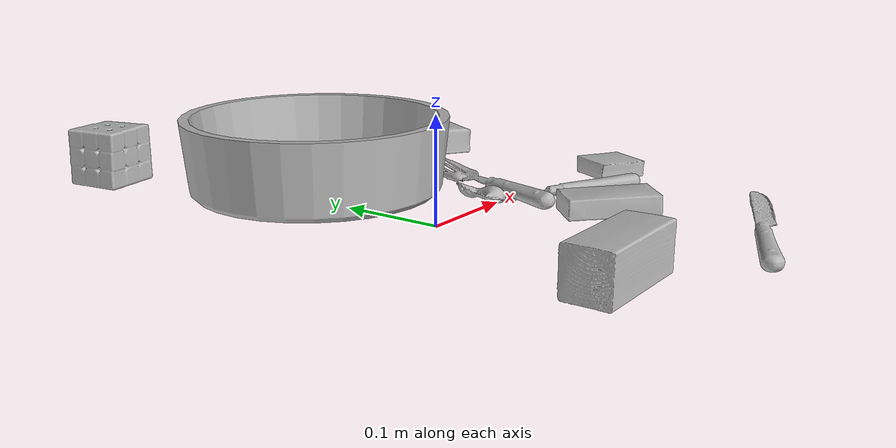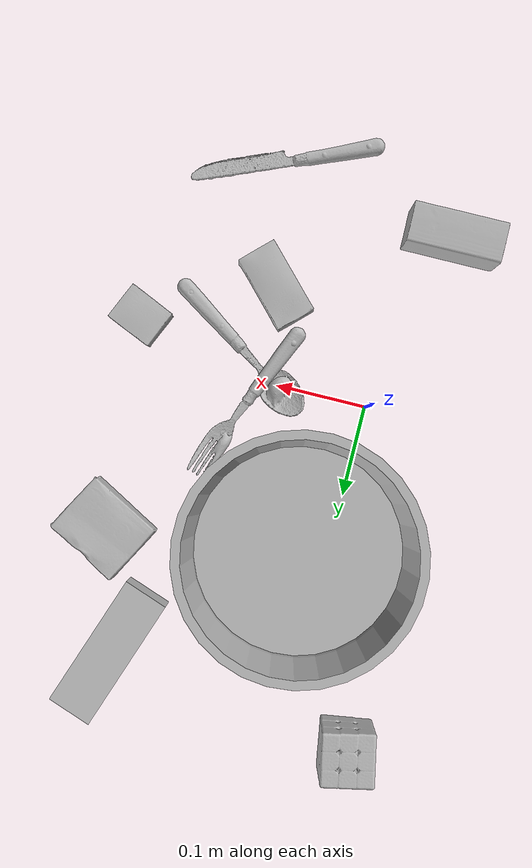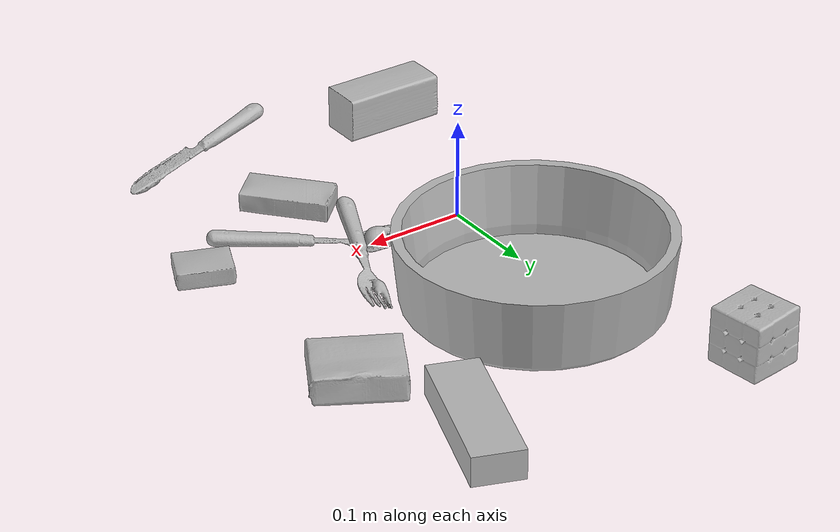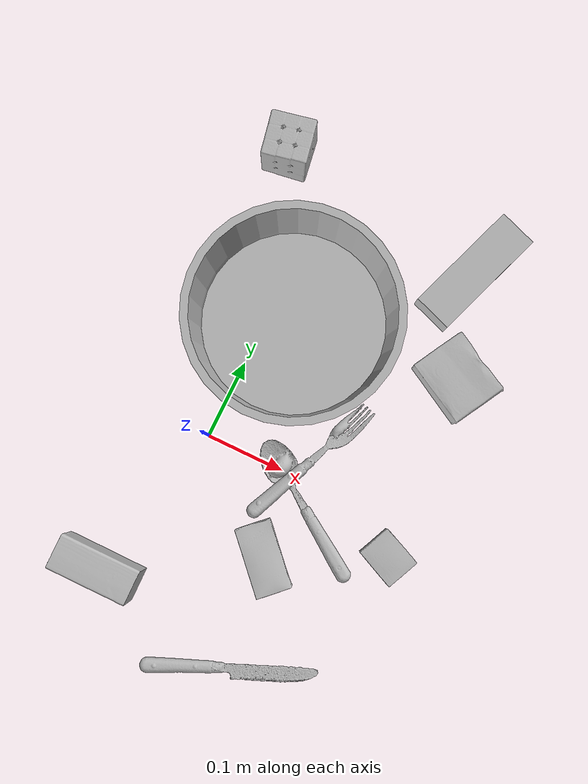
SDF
<sdf version="1.4">
  <world name="default">
    <light name="light1" type="point">
      <pose>0 0 1 0 0 0</pose>
      <diffuse>3 3 3 1</diffuse>
      <specular>3 3 3 1</specular>
    </light>
    <light name="light2" type="point">
      <pose>0 0.5 2 0 0 0</pose>
      <diffuse>1 1 1 1</diffuse>
      <specular>1 1 1 1</specular>
    </light>
    <light name="light3" type="point">
      <pose>0 0.5 2 0 0 0</pose>
      <diffuse>3 3 3 1</diffuse>
      <specular>3 3 3 1</specular>
    </light>
    <scene>
      <ambient>0.7 0.7 0.7</ambient>
    </scene>
    <model name="box11">
      <link name="link_box11">
        <collision name="default">
          <geometry>
            <mesh>
              <uri>model://jenga/collision_meshes/collision.obj</uri>
              <scale>1.0 1.0 1.0</scale>
            </mesh>
          </geometry>
          <surface>
            <friction>
              <ode>
                <mu>0.5</mu>
                <mu2>0.5</mu2>
              </ode>
            </friction>
          <contact>
        <ode>
            <max_vel>0</max_vel>
            <min_depth>0.0001</min_depth>
            <kp>1e8</kp>
        </ode>
    </contact></surface>
        </collision>
        <visual name="default">
          <geometry>
            <mesh>
              <uri>model://jenga/visual_meshes/visual.dae</uri>
              <scale>1.0 1.0 1.0</scale>
            </mesh>
          </geometry>
        </visual>
        <inertial>
          <mass>0.22063912451267242</mass>
          <pose>-2.502855807051674e-07 -0.00010250011109746993 -4.0923405322246253e-05 0.0 -7.34215461761844e-07 0.0</pose>
          <inertia>
            <ixx>6.1056206e-05</ixx>
            <iyy>0.00041371517</iyy>
            <izz>0.00044167612</izz>
            <ixy>0</ixy>
            <ixz>0</ixz>
            <iyz>0</iyz>
          </inertia>
        </inertial>
      </link>
      <pose>0.20675046741962433 0.3221668303012848 0.014999999664723873 -6.731210783296305e-09 2.941845711566142e-11 -1.911939515824819</pose>
    </model>
    <model name="box12">
      <link name="link_box12">
        <collision name="default">
          <geometry>
            <mesh>
              <uri>model://sugar_box/collision_meshes/collision.obj</uri>
              <scale>0.5 0.5 0.5</scale>
            </mesh>
          </geometry>
          <surface>
            <friction>
              <ode>
                <mu>0.5</mu>
                <mu2>0.5</mu2>
              </ode>
            </friction>
          <contact>
        <ode>
            <max_vel>0</max_vel>
            <min_depth>0.0001</min_depth>
            <kp>1e8</kp>
        </ode>
    </contact></surface>
        </collision>
        <visual name="default">
          <geometry>
            <mesh>
              <uri>model://sugar_box/visual_meshes/visual.dae</uri>
              <scale>0.5 0.5 0.5</scale>
            </mesh>
          </geometry>
        </visual>
        <inertial>
          <mass>0.053318966180086136</mass>
          <pose>0.0005171863595023751 1.924554817378521e-05 -0.00018182402709499002 -0.00040462627129080113 0.001050663522124822 0.0026153787889376494</pose>
          <inertia>
            <ixx>1.1106302e-05</ixx>
            <iyy>3.5897858e-05</iyy>
            <izz>4.2974014e-05</izz>
            <ixy>0</ixy>
            <ixz>0</ixz>
            <iyz>0</iyz>
          </inertia>
        </inertial>
      </link>
      <pose>0.1256781965494156 -0.10447009652853012 0.011399301700294018 0.0007758037149265929 -0.02343304748017112 -0.8090568224951256</pose>
    </model>
    <model name="box13">
      <link name="link_box13">
        <collision name="default">
          <geometry>
            <mesh>
              <uri>model://gelatin_box/collision_meshes/collision.obj</uri>
              <scale>1.0 1.0 1.0</scale>
            </mesh>
          </geometry>
          <surface>
            <friction>
              <ode>
                <mu>0.5</mu>
                <mu2>0.5</mu2>
              </ode>
            </friction>
          <contact>
        <ode>
            <max_vel>0</max_vel>
            <min_depth>0.0001</min_depth>
            <kp>1e8</kp>
        </ode>
    </contact></surface>
        </collision>
        <visual name="default">
          <geometry>
            <mesh>
              <uri>model://gelatin_box/visual_meshes/visual.dae</uri>
              <scale>1.0 1.0 1.0</scale>
            </mesh>
          </geometry>
        </visual>
        <inertial>
          <mass>0.19111748039722443</mass>
          <pose>0.0004319618456065655 0.00011156871914863586 -0.00036403207923285663 -0.0010503719765995955 -0.004755818690324038 0.01644055947160125</pose>
          <inertia>
            <ixx>0.00013491335</ixx>
            <iyy>9.63679e-05</iyy>
            <izz>0.00020536821</izz>
            <ixy>0</ixy>
            <ixz>0</ixz>
            <iyz>0</iyz>
          </inertia>
        </inertial>
      </link>
      <pose>0.24417658150196075 0.19467680156230927 0.015168314799666405 0.005597370371213133 -0.0073044627836340555 1.0590754933065578</pose>
    </model>
    <model name="box21">
      <link name="link_box21">
        <collision name="default">
          <geometry>
            <mesh>
              <uri>model://pudding_box/collision_meshes/collision.obj</uri>
              <scale>0.5 0.5 0.5</scale>
            </mesh>
          </geometry>
          <surface>
            <friction>
              <ode>
                <mu>0.5</mu>
                <mu2>0.5</mu2>
              </ode>
            </friction>
          <contact>
        <ode>
            <max_vel>0</max_vel>
            <min_depth>0.0001</min_depth>
            <kp>1e8</kp>
        </ode>
    </contact></surface>
        </collision>
        <visual name="default">
          <geometry>
            <mesh>
              <uri>model://pudding_box/visual_meshes/visual.dae</uri>
              <scale>0.5 0.5 0.5</scale>
            </mesh>
          </geometry>
        </visual>
        <inertial>
          <mass>0.037507444620132446</mass>
          <pose>0.00024474109522998333 0.0004033942532259971 -0.0002594413817860186 0.00521310221980129 -0.006603800139852783 0.020079832606434308</pose>
          <inertia>
            <ixx>1.0600058e-05</ixx>
            <iyy>7.131795e-06</iyy>
            <izz>1.5653754e-05</izz>
            <ixy>0</ixy>
            <ixz>0</ixz>
            <iyz>0</iyz>
          </inertia>
        </inertial>
      </link>
      <pose>0.26111626625061035 -0.038341324776411057 0.009862903505563736 0.02234859082814778 -0.011391264714682554 1.151743166724036</pose>
    </model>
    <model name="box22">
      <link name="link_box22">
        <collision name="default">
          <geometry>
            <mesh>
              <uri>model://rubiks_cube/collision_meshes/collision.obj</uri>
              <scale>1.0 1.0 1.0</scale>
            </mesh>
          </geometry>
          <surface>
            <friction>
              <ode>
                <mu>0.5</mu>
                <mu2>0.5</mu2>
              </ode>
            </friction>
          <contact>
        <ode>
            <max_vel>0</max_vel>
            <min_depth>0.0001</min_depth>
            <kp>1e8</kp>
        </ode>
    </contact></surface>
        </collision>
        <visual name="default">
          <geometry>
            <mesh>
              <uri>model://rubiks_cube/visual_meshes/visual.dae</uri>
              <scale>1.0 1.0 1.0</scale>
            </mesh>
          </geometry>
        </visual>
        <inertial>
          <mass>0.19412381947040558</mass>
          <pose>2.6721041649580002e-05 5.2569666877388954e-05 -7.264316082000732e-06 -0.05467327462967597 -0.09814157667114887 -0.034454893398498845</pose>
          <inertia>
            <ixx>0.000107266445</ixx>
            <iyy>0.0001067662</iyy>
            <izz>0.00010815532</izz>
            <ixy>0</ixy>
            <ixz>0</ixz>
            <iyz>0</iyz>
          </inertia>
        </inertial>
      </link>
      <pose>-0.06618250161409378 0.3641373813152313 0.028678977862000465 -2.6370147495727852e-06 -9.84791184738028e-07 -2.952496816840009</pose>
    </model>
    <model name="box23">
      <link name="link_box23">
        <collision name="default">
          <geometry>
            <mesh>
              <uri>model://wood_block/collision_meshes/collision.obj</uri>
              <scale>0.5 0.5 0.5</scale>
            </mesh>
          </geometry>
          <surface>
            <friction>
              <ode>
                <mu>0.5</mu>
                <mu2>0.5</mu2>
              </ode>
            </friction>
          <contact>
        <ode>
            <max_vel>0</max_vel>
            <min_depth>0.0001</min_depth>
            <kp>1e8</kp>
        </ode>
    </contact></surface>
        </collision>
        <visual name="default">
          <geometry>
            <mesh>
              <uri>model://wood_block/visual_meshes/visual.dae</uri>
              <scale>0.5 0.5 0.5</scale>
            </mesh>
          </geometry>
        </visual>
        <inertial>
          <mass>0.12021861970424652</mass>
          <pose>-2.9066577553749084e-06 -0.000285404734313488 0.00013204291462898254 -0.05220783851692058 -0.005192695246339916 -0.006861377900732038</pose>
          <inertia>
            <ixx>4.0217674e-05</ixx>
            <iyy>0.00012704768</iyy>
            <izz>0.00012657243</izz>
            <ixy>0</ixy>
            <ixz>0</ixz>
            <iyz>0</iyz>
          </inertia>
        </inertial>
      </link>
      <pose>-0.04818212613463402 -0.19999413192272186 0.0226292721927166 -0.005208583365082173 0.005718693065823255 -3.1360540416686584</pose>
    </model>
    <model name="plate1">
      <link name="link_plate1">
        <collision name="default">
          <geometry>
            <mesh>
              <uri>model://pan_tefal/collision_meshes/collision.obj</uri>
              <scale>1.0 1.0 1.0</scale>
            </mesh>
          </geometry>
          <surface>
            <friction>
              <ode>
                <mu>0.5</mu>
                <mu2>0.5</mu2>
              </ode>
            </friction>
          <contact>
        <ode>
            <max_vel>0</max_vel>
            <min_depth>0.0001</min_depth>
            <kp>1e8</kp>
        </ode>
    </contact></surface>
        </collision>
        <visual name="default">
          <geometry>
            <mesh>
              <uri>model://pan_tefal/visual_meshes/visual.dae</uri>
              <scale>1.0 1.0 1.0</scale>
            </mesh>
          </geometry>
        </visual>
        <inertial>
          <mass>1.1174349784851074</mass>
          <pose>-0.0001800186582840979 3.278696021880023e-05 -0.00851493701338768 0.0008190242272949328 -0.00033013996347192336 -0.33186114310704434</pose>
          <inertia>
            <ixx>0.0077136005</ixx>
            <iyy>0.0077633304</iyy>
            <izz>0.014199255</izz>
            <ixy>0</ixy>
            <ixz>0</ixz>
            <iyz>0</iyz>
          </inertia>
        </inertial>
      </link>
      <pose>0.0333649180829525 0.17074911296367645 0.03805002570152283 7.775437986922694e-08 -3.955887320500991e-08 -2.2169999317842874</pose>
    </model>
    <model name="silverware1">
      <link name="link_silverware1">
        <collision name="default">
          <geometry>
            <mesh>
              <uri>model://spoon/collision_meshes/collision.obj</uri>
              <scale>1.0 1.0 1.0</scale>
            </mesh>
          </geometry>
          <surface>
            <friction>
              <ode>
                <mu>0.5</mu>
                <mu2>0.5</mu2>
              </ode>
            </friction>
          <contact>
        <ode>
            <max_vel>0</max_vel>
            <min_depth>0.0001</min_depth>
            <kp>1e8</kp>
        </ode>
    </contact></surface>
        </collision>
        <visual name="default">
          <geometry>
            <mesh>
              <uri>model://spoon/visual_meshes/visual.dae</uri>
              <scale>1.0 1.0 1.0</scale>
            </mesh>
          </geometry>
        </visual>
        <inertial>
          <mass>0.03790392354130745</mass>
          <pose>-0.005526311695575714 -0.0016034170985221863 -0.0007271655485965312 0.03521845899657386 -0.039065840459698326 0.006150612465639116</pose>
          <inertia>
            <ixx>2.1082776e-06</ixx>
            <iyy>0.00014422317</iyy>
            <izz>0.00014526285</izz>
            <ixy>0</ixy>
            <ixz>0</ixz>
            <iyz>0</iyz>
          </inertia>
        </inertial>
      </link>
      <pose>0.14602778851985931 -0.03216751292347908 0.008385246619582176 0.006803361962261579 0.02689433114394651 2.543078673285455</pose>
    </model>
    <model name="silverware2">
      <link name="link_silverware2">
        <collision name="default">
          <geometry>
            <mesh>
              <uri>model://fork/collision_meshes/collision.obj</uri>
              <scale>1.0 1.0 1.0</scale>
            </mesh>
          </geometry>
          <surface>
            <friction>
              <ode>
                <mu>0.5</mu>
                <mu2>0.5</mu2>
              </ode>
            </friction>
          <contact>
        <ode>
            <max_vel>0</max_vel>
            <min_depth>0.0001</min_depth>
            <kp>1e8</kp>
        </ode>
    </contact></surface>
        </collision>
        <visual name="default">
          <geometry>
            <mesh>
              <uri>model://fork/visual_meshes/visual.dae</uri>
              <scale>1.0 1.0 1.0</scale>
            </mesh>
          </geometry>
        </visual>
        <inertial>
          <mass>0.029004188254475594</mass>
          <pose>-0.02957005612552166 0.0004658824182115495 0.00032188621116802096 -0.013551880215526314 -0.010977843078655252 0.014453906566097012</pose>
          <inertia>
            <ixx>1.0167608e-06</ixx>
            <iyy>7.572158e-05</iyy>
            <izz>7.617634e-05</izz>
            <ixy>0</ixy>
            <ixz>0</ixz>
            <iyz>0</iyz>
          </inertia>
        </inertial>
      </link>
      <pose>0.1265694946050644 0.02411499246954918 0.009309099987149239 -0.2720623444830217 0.043976792539221154 1.1562987623647207</pose>
    </model>
    <model name="silverware3">
      <link name="link_silverware3">
        <collision name="default">
          <geometry>
            <mesh>
              <uri>model://knife/collision_meshes/collision.obj</uri>
              <scale>1.0 1.0 1.0</scale>
            </mesh>
          </geometry>
          <surface>
            <friction>
              <ode>
                <mu>0.5</mu>
                <mu2>0.5</mu2>
              </ode>
            </friction>
          <contact>
        <ode>
            <max_vel>0</max_vel>
            <min_depth>0.0001</min_depth>
            <kp>1e8</kp>
        </ode>
    </contact></surface>
        </collision>
        <visual name="default">
          <geometry>
            <mesh>
              <uri>model://knife/visual_meshes/visual.dae</uri>
              <scale>1.0 1.0 1.0</scale>
            </mesh>
          </geometry>
        </visual>
        <inertial>
          <mass>0.015800314024090767</mass>
          <pose>-0.023785250261425972 0.0015275126788765192 5.0620288675418124e-05 0.07305498599936577 0.01724841842216061 -0.0074098211805850795</pose>
          <inertia>
            <ixx>4.48477e-07</ixx>
            <iyy>6.0702252e-05</iyy>
            <izz>6.0846694e-05</izz>
            <ixy>0</ixy>
            <ixz>0</ixz>
            <iyz>0</iyz>
          </inertia>
        </inertial>
      </link>
      <pose>0.1464075893163681 -0.24290943145751953 0.00794657040387392 -0.02385741346239302 -0.014543110052687226 0.3945906770267331</pose>
    </model>
  <physics type="ode">
      <max_contacts>50</max_contacts>
      <ode>
        <solver>
          <type>quick</type>
          <iters>75</iters>
        </solver>
        <constraints>
          <contact_max_correcting_vel>0</contact_max_correcting_vel>
          <contact_surface_layer>0</contact_surface_layer>
        </constraints>
      </ode>
    </physics></world>
</sdf>
